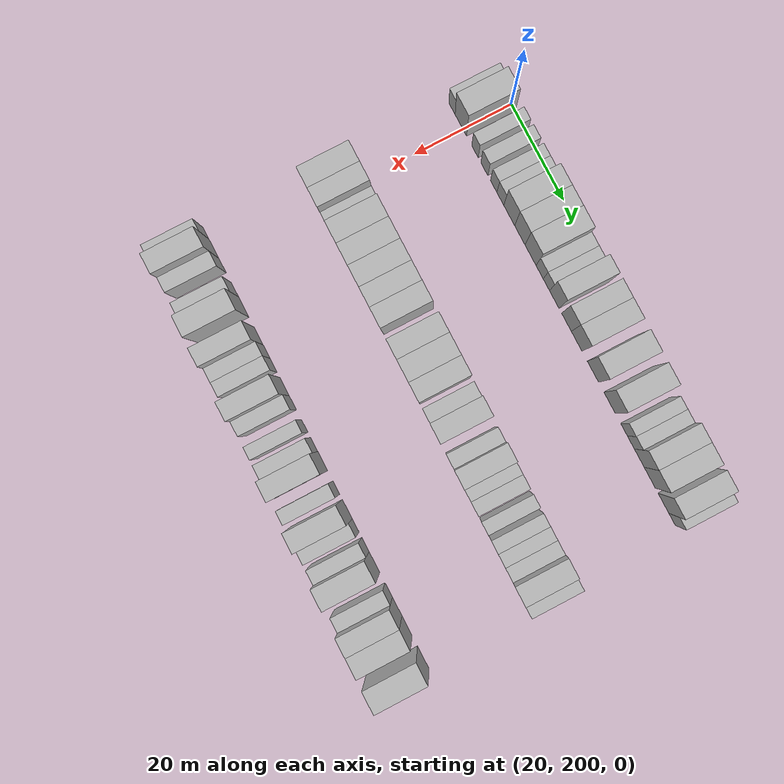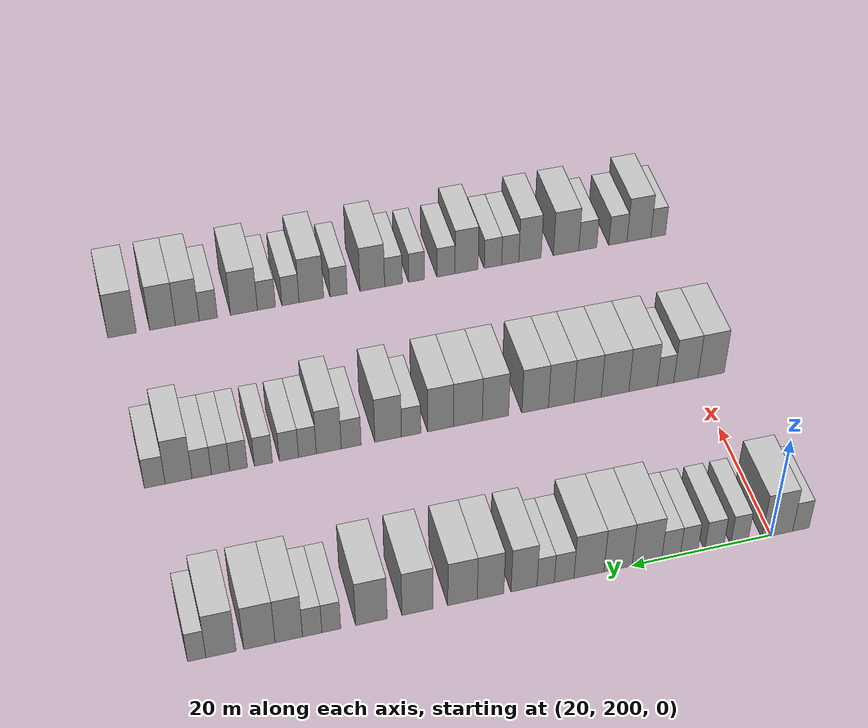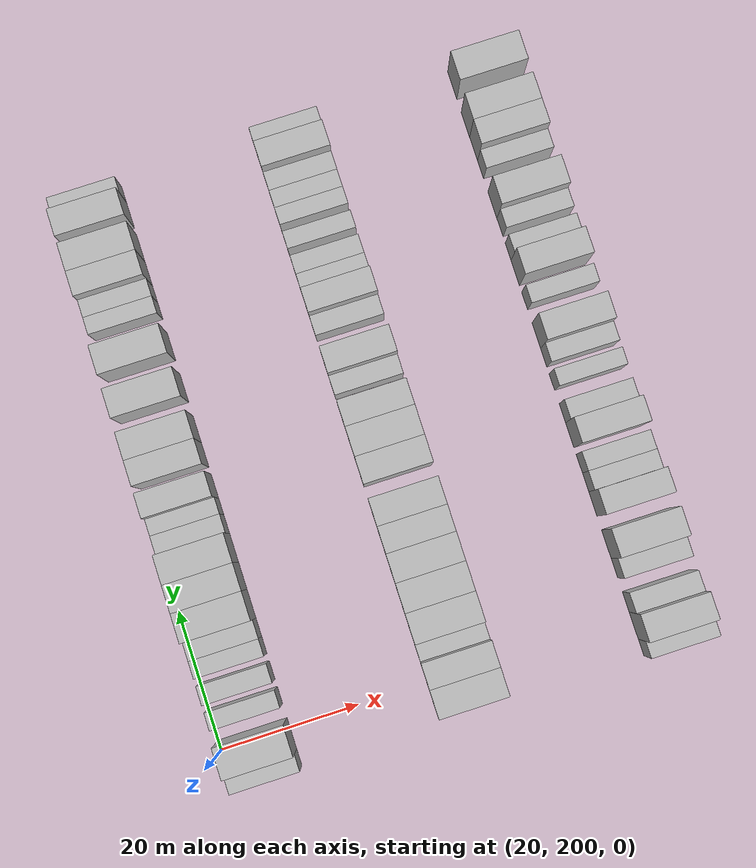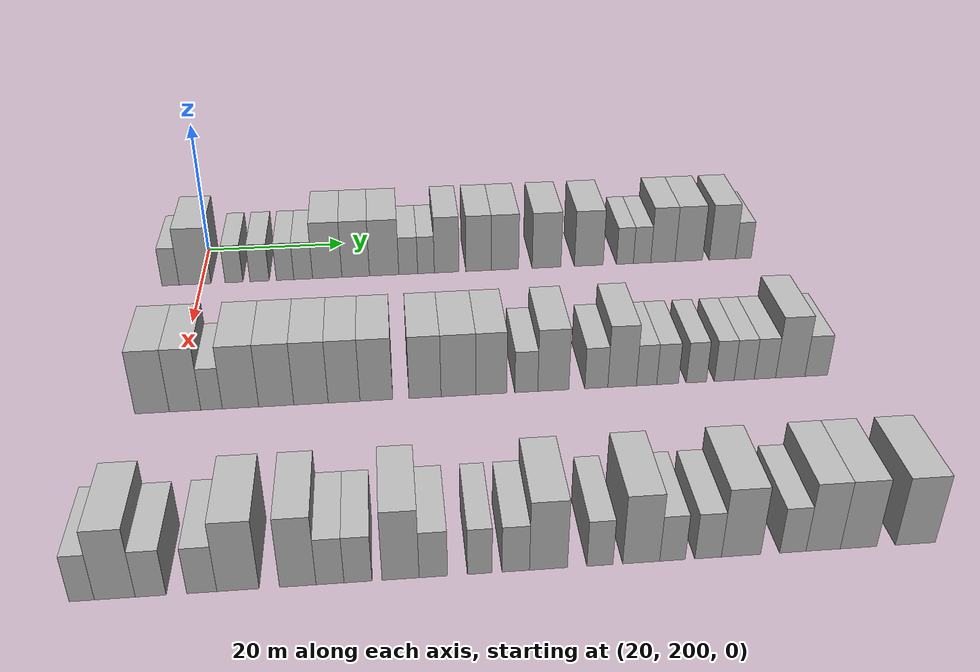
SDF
<sdf version="1.6">
 <world name="default">
  <model name="building_105">
   <static>1</static>
   <pose>25.0000 195.6701 0 0.000000 0.000000 0.000000</pose>
   <link name="link">
    <pose>0 0 3.00 0 0 0</pose>
    <collision name="collision"><geometry><box><size>10.0000 2.4074 6.0000</size></box></geometry></collision>
    <visual name="visual">
     <cast_shadows>0</cast_shadows>
     <geometry><box><size>10.0000 2.4074 6.0000</size></box></geometry>
     <material>
      <script>
       <uri>model://HANNAS_wall/materials/scripts</uri>
       <uri>model://HANNAS_wall/materials/textures</uri>
       <name>vrc/HANNAS_wall</name>
      </script>
     </material>
    </visual>
   </link>
  </model>
  <model name="building_106">
   <static>1</static>
   <pose>25.0000 199.1160 0 0.000000 0.000000 0.000000</pose>
   <link name="link">
    <pose>0 0 4.50 0 0 0</pose>
    <collision name="collision"><geometry><box><size>10.0000 4.4845 9.0000</size></box></geometry></collision>
    <visual name="visual">
     <cast_shadows>0</cast_shadows>
     <geometry><box><size>10.0000 4.4845 9.0000</size></box></geometry>
     <material>
      <script>
       <uri>model://HANNAS_wall/materials/scripts</uri>
       <uri>model://HANNAS_wall/materials/textures</uri>
       <name>vrc/HANNAS_wall</name>
      </script>
     </material>
    </visual>
   </link>
  </model>
  <model name="building_107">
   <static>1</static>
   <pose>25.0000 204.6171 0 0.000000 0.000000 0.000000</pose>
   <link name="link">
    <pose>0 0 3.00 0 0 0</pose>
    <collision name="collision"><geometry><box><size>10.0000 2.5177 6.0000</size></box></geometry></collision>
    <visual name="visual">
     <cast_shadows>0</cast_shadows>
     <geometry><box><size>10.0000 2.5177 6.0000</size></box></geometry>
     <material>
      <script>
       <uri>model://HANNAS_wall/materials/scripts</uri>
       <uri>model://HANNAS_wall/materials/textures</uri>
       <name>vrc/HANNAS_wall</name>
      </script>
     </material>
    </visual>
   </link>
  </model>
  <model name="building_108">
   <static>1</static>
   <pose>25.0000 208.2448 0 0.000000 0.000000 0.000000</pose>
   <link name="link">
    <pose>0 0 3.00 0 0 0</pose>
    <collision name="collision"><geometry><box><size>10.0000 2.7377 6.0000</size></box></geometry></collision>
    <visual name="visual">
     <cast_shadows>0</cast_shadows>
     <geometry><box><size>10.0000 2.7377 6.0000</size></box></geometry>
     <material>
      <script>
       <uri>model://HANNAS_wall/materials/scripts</uri>
       <uri>model://HANNAS_wall/materials/textures</uri>
       <name>vrc/HANNAS_wall</name>
      </script>
     </material>
    </visual>
   </link>
  </model>
  <model name="building_109">
   <static>1</static>
   <pose>25.0000 211.8629 0 0.000000 0.000000 0.000000</pose>
   <link name="link">
    <pose>0 0 3.00 0 0 0</pose>
    <collision name="collision"><geometry><box><size>10.0000 2.4986 6.0000</size></box></geometry></collision>
    <visual name="visual">
     <cast_shadows>0</cast_shadows>
     <geometry><box><size>10.0000 2.4986 6.0000</size></box></geometry>
     <material>
      <script>
       <uri>model://HANNAS_wall/materials/scripts</uri>
       <uri>model://HANNAS_wall/materials/textures</uri>
       <name>vrc/HANNAS_wall</name>
      </script>
     </material>
    </visual>
   </link>
  </model>
  <model name="building_110">
   <static>1</static>
   <pose>25.0000 214.4516 0 0.000000 0.000000 0.000000</pose>
   <link name="link">
    <pose>0 0 3.00 0 0 0</pose>
    <collision name="collision"><geometry><box><size>10.0000 2.6788 6.0000</size></box></geometry></collision>
    <visual name="visual">
     <cast_shadows>0</cast_shadows>
     <geometry><box><size>10.0000 2.6788 6.0000</size></box></geometry>
     <material>
      <script>
       <uri>model://HANNAS_wall/materials/scripts</uri>
       <uri>model://HANNAS_wall/materials/textures</uri>
       <name>vrc/HANNAS_wall</name>
      </script>
     </material>
    </visual>
   </link>
  </model>
  <model name="building_111">
   <static>1</static>
   <pose>25.0000 217.8887 0 0.000000 0.000000 0.000000</pose>
   <link name="link">
    <pose>0 0 4.50 0 0 0</pose>
    <collision name="collision"><geometry><box><size>10.0000 4.1953 9.0000</size></box></geometry></collision>
    <visual name="visual">
     <cast_shadows>0</cast_shadows>
     <geometry><box><size>10.0000 4.1953 9.0000</size></box></geometry>
     <material>
      <script>
       <uri>model://HANNAS_wall/materials/scripts</uri>
       <uri>model://HANNAS_wall/materials/textures</uri>
       <name>vrc/HANNAS_wall</name>
      </script>
     </material>
    </visual>
   </link>
  </model>
  <model name="building_112">
   <static>1</static>
   <pose>25.0000 221.9739 0 0.000000 0.000000 0.000000</pose>
   <link name="link">
    <pose>0 0 4.50 0 0 0</pose>
    <collision name="collision"><geometry><box><size>10.0000 3.9751 9.0000</size></box></geometry></collision>
    <visual name="visual">
     <cast_shadows>0</cast_shadows>
     <geometry><box><size>10.0000 3.9751 9.0000</size></box></geometry>
     <material>
      <script>
       <uri>model://HANNAS_wall/materials/scripts</uri>
       <uri>model://HANNAS_wall/materials/textures</uri>
       <name>vrc/HANNAS_wall</name>
      </script>
     </material>
    </visual>
   </link>
  </model>
  <model name="building_113">
   <static>1</static>
   <pose>25.0000 226.0770 0 0.000000 0.000000 0.000000</pose>
   <link name="link">
    <pose>0 0 4.50 0 0 0</pose>
    <collision name="collision"><geometry><box><size>10.0000 4.2312 9.0000</size></box></geometry></collision>
    <visual name="visual">
     <cast_shadows>0</cast_shadows>
     <geometry><box><size>10.0000 4.2312 9.0000</size></box></geometry>
     <material>
      <script>
       <uri>model://HANNAS_wall/materials/scripts</uri>
       <uri>model://HANNAS_wall/materials/textures</uri>
       <name>vrc/HANNAS_wall</name>
      </script>
     </material>
    </visual>
   </link>
  </model>
  <model name="building_114">
   <static>1</static>
   <pose>25.0000 229.5596 0 0.000000 0.000000 0.000000</pose>
   <link name="link">
    <pose>0 0 3.00 0 0 0</pose>
    <collision name="collision"><geometry><box><size>10.0000 2.7341 6.0000</size></box></geometry></collision>
    <visual name="visual">
     <cast_shadows>0</cast_shadows>
     <geometry><box><size>10.0000 2.7341 6.0000</size></box></geometry>
     <material>
      <script>
       <uri>model://HANNAS_wall/materials/scripts</uri>
       <uri>model://HANNAS_wall/materials/textures</uri>
       <name>vrc/HANNAS_wall</name>
      </script>
     </material>
    </visual>
   </link>
  </model>
  <model name="building_115">
   <static>1</static>
   <pose>25.0000 232.1366 0 0.000000 0.000000 0.000000</pose>
   <link name="link">
    <pose>0 0 3.00 0 0 0</pose>
    <collision name="collision"><geometry><box><size>10.0000 2.4199 6.0000</size></box></geometry></collision>
    <visual name="visual">
     <cast_shadows>0</cast_shadows>
     <geometry><box><size>10.0000 2.4199 6.0000</size></box></geometry>
     <material>
      <script>
       <uri>model://HANNAS_wall/materials/scripts</uri>
       <uri>model://HANNAS_wall/materials/textures</uri>
       <name>vrc/HANNAS_wall</name>
      </script>
     </material>
    </visual>
   </link>
  </model>
  <model name="building_116">
   <static>1</static>
   <pose>25.0000 235.1518 0 0.000000 0.000000 0.000000</pose>
   <link name="link">
    <pose>0 0 4.50 0 0 0</pose>
    <collision name="collision"><geometry><box><size>10.0000 3.6105 9.0000</size></box></geometry></collision>
    <visual name="visual">
     <cast_shadows>0</cast_shadows>
     <geometry><box><size>10.0000 3.6105 9.0000</size></box></geometry>
     <material>
      <script>
       <uri>model://HANNAS_wall/materials/scripts</uri>
       <uri>model://HANNAS_wall/materials/textures</uri>
       <name>vrc/HANNAS_wall</name>
      </script>
     </material>
    </visual>
   </link>
  </model>
  <model name="building_117">
   <static>1</static>
   <pose>25.0000 239.7912 0 0.000000 0.000000 0.000000</pose>
   <link name="link">
    <pose>0 0 4.50 0 0 0</pose>
    <collision name="collision"><geometry><box><size>10.0000 3.6682 9.0000</size></box></geometry></collision>
    <visual name="visual">
     <cast_shadows>0</cast_shadows>
     <geometry><box><size>10.0000 3.6682 9.0000</size></box></geometry>
     <material>
      <script>
       <uri>model://HANNAS_wall/materials/scripts</uri>
       <uri>model://HANNAS_wall/materials/textures</uri>
       <name>vrc/HANNAS_wall</name>
      </script>
     </material>
    </visual>
   </link>
  </model>
  <model name="building_118">
   <static>1</static>
   <pose>25.0000 243.6455 0 0.000000 0.000000 0.000000</pose>
   <link name="link">
    <pose>0 0 4.50 0 0 0</pose>
    <collision name="collision"><geometry><box><size>10.0000 4.0405 9.0000</size></box></geometry></collision>
    <visual name="visual">
     <cast_shadows>0</cast_shadows>
     <geometry><box><size>10.0000 4.0405 9.0000</size></box></geometry>
     <material>
      <script>
       <uri>model://HANNAS_wall/materials/scripts</uri>
       <uri>model://HANNAS_wall/materials/textures</uri>
       <name>vrc/HANNAS_wall</name>
      </script>
     </material>
    </visual>
   </link>
  </model>
  <model name="building_119">
   <static>1</static>
   <pose>25.0000 249.7905 0 0.000000 0.000000 0.000000</pose>
   <link name="link">
    <pose>0 0 4.50 0 0 0</pose>
    <collision name="collision"><geometry><box><size>10.0000 4.2494 9.0000</size></box></geometry></collision>
    <visual name="visual">
     <cast_shadows>0</cast_shadows>
     <geometry><box><size>10.0000 4.2494 9.0000</size></box></geometry>
     <material>
      <script>
       <uri>model://HANNAS_wall/materials/scripts</uri>
       <uri>model://HANNAS_wall/materials/textures</uri>
       <name>vrc/HANNAS_wall</name>
      </script>
     </material>
    </visual>
   </link>
  </model>
  <model name="building_120">
   <static>1</static>
   <pose>25.0000 256.0481 0 0.000000 0.000000 0.000000</pose>
   <link name="link">
    <pose>0 0 4.50 0 0 0</pose>
    <collision name="collision"><geometry><box><size>10.0000 4.2659 9.0000</size></box></geometry></collision>
    <visual name="visual">
     <cast_shadows>0</cast_shadows>
     <geometry><box><size>10.0000 4.2659 9.0000</size></box></geometry>
     <material>
      <script>
       <uri>model://HANNAS_wall/materials/scripts</uri>
       <uri>model://HANNAS_wall/materials/textures</uri>
       <name>vrc/HANNAS_wall</name>
      </script>
     </material>
    </visual>
   </link>
  </model>
  <model name="building_121">
   <static>1</static>
   <pose>25.0000 261.4391 0 0.000000 0.000000 0.000000</pose>
   <link name="link">
    <pose>0 0 3.00 0 0 0</pose>
    <collision name="collision"><geometry><box><size>10.0000 2.5162 6.0000</size></box></geometry></collision>
    <visual name="visual">
     <cast_shadows>0</cast_shadows>
     <geometry><box><size>10.0000 2.5162 6.0000</size></box></geometry>
     <material>
      <script>
       <uri>model://HANNAS_wall/materials/scripts</uri>
       <uri>model://HANNAS_wall/materials/textures</uri>
       <name>vrc/HANNAS_wall</name>
      </script>
     </material>
    </visual>
   </link>
  </model>
  <model name="building_122">
   <static>1</static>
   <pose>25.0000 263.9939 0 0.000000 0.000000 0.000000</pose>
   <link name="link">
    <pose>0 0 3.00 0 0 0</pose>
    <collision name="collision"><geometry><box><size>10.0000 2.5934 6.0000</size></box></geometry></collision>
    <visual name="visual">
     <cast_shadows>0</cast_shadows>
     <geometry><box><size>10.0000 2.5934 6.0000</size></box></geometry>
     <material>
      <script>
       <uri>model://HANNAS_wall/materials/scripts</uri>
       <uri>model://HANNAS_wall/materials/textures</uri>
       <name>vrc/HANNAS_wall</name>
      </script>
     </material>
    </visual>
   </link>
  </model>
  <model name="building_123">
   <static>1</static>
   <pose>25.0000 267.1107 0 0.000000 0.000000 0.000000</pose>
   <link name="link">
    <pose>0 0 4.50 0 0 0</pose>
    <collision name="collision"><geometry><box><size>10.0000 3.6402 9.0000</size></box></geometry></collision>
    <visual name="visual">
     <cast_shadows>0</cast_shadows>
     <geometry><box><size>10.0000 3.6402 9.0000</size></box></geometry>
     <material>
      <script>
       <uri>model://HANNAS_wall/materials/scripts</uri>
       <uri>model://HANNAS_wall/materials/textures</uri>
       <name>vrc/HANNAS_wall</name>
      </script>
     </material>
    </visual>
   </link>
  </model>
  <model name="building_124">
   <static>1</static>
   <pose>25.0000 271.0103 0 0.000000 0.000000 0.000000</pose>
   <link name="link">
    <pose>0 0 4.50 0 0 0</pose>
    <collision name="collision"><geometry><box><size>10.0000 4.1590 9.0000</size></box></geometry></collision>
    <visual name="visual">
     <cast_shadows>0</cast_shadows>
     <geometry><box><size>10.0000 4.1590 9.0000</size></box></geometry>
     <material>
      <script>
       <uri>model://HANNAS_wall/materials/scripts</uri>
       <uri>model://HANNAS_wall/materials/textures</uri>
       <name>vrc/HANNAS_wall</name>
      </script>
     </material>
    </visual>
   </link>
  </model>
  <model name="building_125">
   <static>1</static>
   <pose>25.0000 276.0786 0 0.000000 0.000000 0.000000</pose>
   <link name="link">
    <pose>0 0 4.50 0 0 0</pose>
    <collision name="collision"><geometry><box><size>10.0000 3.9776 9.0000</size></box></geometry></collision>
    <visual name="visual">
     <cast_shadows>0</cast_shadows>
     <geometry><box><size>10.0000 3.9776 9.0000</size></box></geometry>
     <material>
      <script>
       <uri>model://HANNAS_wall/materials/scripts</uri>
       <uri>model://HANNAS_wall/materials/textures</uri>
       <name>vrc/HANNAS_wall</name>
      </script>
     </material>
    </visual>
   </link>
  </model>
  <model name="building_126">
   <static>1</static>
   <pose>25.0000 279.2692 0 0.000000 0.000000 0.000000</pose>
   <link name="link">
    <pose>0 0 3.00 0 0 0</pose>
    <collision name="collision"><geometry><box><size>10.0000 2.4036 6.0000</size></box></geometry></collision>
    <visual name="visual">
     <cast_shadows>0</cast_shadows>
     <geometry><box><size>10.0000 2.4036 6.0000</size></box></geometry>
     <material>
      <script>
       <uri>model://HANNAS_wall/materials/scripts</uri>
       <uri>model://HANNAS_wall/materials/textures</uri>
       <name>vrc/HANNAS_wall</name>
      </script>
     </material>
    </visual>
   </link>
  </model>
  <model name="building_250">
   <static>1</static>
   <pose>55.0000 197.6248 0 0.000000 0.000000 0.000000</pose>
   <link name="link">
    <pose>0 0 4.50 0 0 0</pose>
    <collision name="collision"><geometry><box><size>10.0000 4.0886 9.0000</size></box></geometry></collision>
    <visual name="visual">
     <cast_shadows>0</cast_shadows>
     <geometry><box><size>10.0000 4.0886 9.0000</size></box></geometry>
     <material>
      <script>
       <uri>model://HANNAS_wall/materials/scripts</uri>
       <uri>model://HANNAS_wall/materials/textures</uri>
       <name>vrc/HANNAS_wall</name>
      </script>
     </material>
    </visual>
   </link>
  </model>
  <model name="building_251">
   <static>1</static>
   <pose>55.0000 201.5388 0 0.000000 0.000000 0.000000</pose>
   <link name="link">
    <pose>0 0 4.50 0 0 0</pose>
    <collision name="collision"><geometry><box><size>10.0000 3.7393 9.0000</size></box></geometry></collision>
    <visual name="visual">
     <cast_shadows>0</cast_shadows>
     <geometry><box><size>10.0000 3.7393 9.0000</size></box></geometry>
     <material>
      <script>
       <uri>model://HANNAS_wall/materials/scripts</uri>
       <uri>model://HANNAS_wall/materials/textures</uri>
       <name>vrc/HANNAS_wall</name>
      </script>
     </material>
    </visual>
   </link>
  </model>
  <model name="building_252">
   <static>1</static>
   <pose>55.0000 204.6922 0 0.000000 0.000000 0.000000</pose>
   <link name="link">
    <pose>0 0 3.00 0 0 0</pose>
    <collision name="collision"><geometry><box><size>10.0000 2.5674 6.0000</size></box></geometry></collision>
    <visual name="visual">
     <cast_shadows>0</cast_shadows>
     <geometry><box><size>10.0000 2.5674 6.0000</size></box></geometry>
     <material>
      <script>
       <uri>model://HANNAS_wall/materials/scripts</uri>
       <uri>model://HANNAS_wall/materials/textures</uri>
       <name>vrc/HANNAS_wall</name>
      </script>
     </material>
    </visual>
   </link>
  </model>
  <model name="building_253">
   <static>1</static>
   <pose>55.0000 208.1551 0 0.000000 0.000000 0.000000</pose>
   <link name="link">
    <pose>0 0 4.50 0 0 0</pose>
    <collision name="collision"><geometry><box><size>10.0000 4.3584 9.0000</size></box></geometry></collision>
    <visual name="visual">
     <cast_shadows>0</cast_shadows>
     <geometry><box><size>10.0000 4.3584 9.0000</size></box></geometry>
     <material>
      <script>
       <uri>model://HANNAS_wall/materials/scripts</uri>
       <uri>model://HANNAS_wall/materials/textures</uri>
       <name>vrc/HANNAS_wall</name>
      </script>
     </material>
    </visual>
   </link>
  </model>
  <model name="building_254">
   <static>1</static>
   <pose>55.0000 212.4514 0 0.000000 0.000000 0.000000</pose>
   <link name="link">
    <pose>0 0 4.50 0 0 0</pose>
    <collision name="collision"><geometry><box><size>10.0000 4.2341 9.0000</size></box></geometry></collision>
    <visual name="visual">
     <cast_shadows>0</cast_shadows>
     <geometry><box><size>10.0000 4.2341 9.0000</size></box></geometry>
     <material>
      <script>
       <uri>model://HANNAS_wall/materials/scripts</uri>
       <uri>model://HANNAS_wall/materials/textures</uri>
       <name>vrc/HANNAS_wall</name>
      </script>
     </material>
    </visual>
   </link>
  </model>
  <model name="building_255">
   <static>1</static>
   <pose>55.0000 216.6435 0 0.000000 0.000000 0.000000</pose>
   <link name="link">
    <pose>0 0 4.50 0 0 0</pose>
    <collision name="collision"><geometry><box><size>10.0000 4.1502 9.0000</size></box></geometry></collision>
    <visual name="visual">
     <cast_shadows>0</cast_shadows>
     <geometry><box><size>10.0000 4.1502 9.0000</size></box></geometry>
     <material>
      <script>
       <uri>model://HANNAS_wall/materials/scripts</uri>
       <uri>model://HANNAS_wall/materials/textures</uri>
       <name>vrc/HANNAS_wall</name>
      </script>
     </material>
    </visual>
   </link>
  </model>
  <model name="building_256">
   <static>1</static>
   <pose>55.0000 220.6488 0 0.000000 0.000000 0.000000</pose>
   <link name="link">
    <pose>0 0 4.50 0 0 0</pose>
    <collision name="collision"><geometry><box><size>10.0000 3.8603 9.0000</size></box></geometry></collision>
    <visual name="visual">
     <cast_shadows>0</cast_shadows>
     <geometry><box><size>10.0000 3.8603 9.0000</size></box></geometry>
     <material>
      <script>
       <uri>model://HANNAS_wall/materials/scripts</uri>
       <uri>model://HANNAS_wall/materials/textures</uri>
       <name>vrc/HANNAS_wall</name>
      </script>
     </material>
    </visual>
   </link>
  </model>
  <model name="building_257">
   <static>1</static>
   <pose>55.0000 224.5781 0 0.000000 0.000000 0.000000</pose>
   <link name="link">
    <pose>0 0 4.50 0 0 0</pose>
    <collision name="collision"><geometry><box><size>10.0000 3.9985 9.0000</size></box></geometry></collision>
    <visual name="visual">
     <cast_shadows>0</cast_shadows>
     <geometry><box><size>10.0000 3.9985 9.0000</size></box></geometry>
     <material>
      <script>
       <uri>model://HANNAS_wall/materials/scripts</uri>
       <uri>model://HANNAS_wall/materials/textures</uri>
       <name>vrc/HANNAS_wall</name>
      </script>
     </material>
    </visual>
   </link>
  </model>
  <model name="building_258">
   <static>1</static>
   <pose>55.0000 230.5422 0 0.000000 0.000000 0.000000</pose>
   <link name="link">
    <pose>0 0 4.50 0 0 0</pose>
    <collision name="collision"><geometry><box><size>10.0000 3.9295 9.0000</size></box></geometry></collision>
    <visual name="visual">
     <cast_shadows>0</cast_shadows>
     <geometry><box><size>10.0000 3.9295 9.0000</size></box></geometry>
     <material>
      <script>
       <uri>model://HANNAS_wall/materials/scripts</uri>
       <uri>model://HANNAS_wall/materials/textures</uri>
       <name>vrc/HANNAS_wall</name>
      </script>
     </material>
    </visual>
   </link>
  </model>
  <model name="building_259">
   <static>1</static>
   <pose>55.0000 234.6573 0 0.000000 0.000000 0.000000</pose>
   <link name="link">
    <pose>0 0 4.50 0 0 0</pose>
    <collision name="collision"><geometry><box><size>10.0000 4.3008 9.0000</size></box></geometry></collision>
    <visual name="visual">
     <cast_shadows>0</cast_shadows>
     <geometry><box><size>10.0000 4.3008 9.0000</size></box></geometry>
     <material>
      <script>
       <uri>model://HANNAS_wall/materials/scripts</uri>
       <uri>model://HANNAS_wall/materials/textures</uri>
       <name>vrc/HANNAS_wall</name>
      </script>
     </material>
    </visual>
   </link>
  </model>
  <model name="building_260">
   <static>1</static>
   <pose>55.0000 238.7198 0 0.000000 0.000000 0.000000</pose>
   <link name="link">
    <pose>0 0 4.50 0 0 0</pose>
    <collision name="collision"><geometry><box><size>10.0000 3.8240 9.0000</size></box></geometry></collision>
    <visual name="visual">
     <cast_shadows>0</cast_shadows>
     <geometry><box><size>10.0000 3.8240 9.0000</size></box></geometry>
     <material>
      <script>
       <uri>model://HANNAS_wall/materials/scripts</uri>
       <uri>model://HANNAS_wall/materials/textures</uri>
       <name>vrc/HANNAS_wall</name>
      </script>
     </material>
    </visual>
   </link>
  </model>
  <model name="building_261">
   <static>1</static>
   <pose>55.0000 243.0560 0 0.000000 0.000000 0.000000</pose>
   <link name="link">
    <pose>0 0 3.00 0 0 0</pose>
    <collision name="collision"><geometry><box><size>10.0000 2.8485 6.0000</size></box></geometry></collision>
    <visual name="visual">
     <cast_shadows>0</cast_shadows>
     <geometry><box><size>10.0000 2.8485 6.0000</size></box></geometry>
     <material>
      <script>
       <uri>model://HANNAS_wall/materials/scripts</uri>
       <uri>model://HANNAS_wall/materials/textures</uri>
       <name>vrc/HANNAS_wall</name>
      </script>
     </material>
    </visual>
   </link>
  </model>
  <model name="building_262">
   <static>1</static>
   <pose>55.0000 246.4287 0 0.000000 0.000000 0.000000</pose>
   <link name="link">
    <pose>0 0 4.50 0 0 0</pose>
    <collision name="collision"><geometry><box><size>10.0000 3.8967 9.0000</size></box></geometry></collision>
    <visual name="visual">
     <cast_shadows>0</cast_shadows>
     <geometry><box><size>10.0000 3.8967 9.0000</size></box></geometry>
     <material>
      <script>
       <uri>model://HANNAS_wall/materials/scripts</uri>
       <uri>model://HANNAS_wall/materials/textures</uri>
       <name>vrc/HANNAS_wall</name>
      </script>
     </material>
    </visual>
   </link>
  </model>
  <model name="building_263">
   <static>1</static>
   <pose>55.0000 251.8244 0 0.000000 0.000000 0.000000</pose>
   <link name="link">
    <pose>0 0 3.00 0 0 0</pose>
    <collision name="collision"><geometry><box><size>10.0000 2.8946 6.0000</size></box></geometry></collision>
    <visual name="visual">
     <cast_shadows>0</cast_shadows>
     <geometry><box><size>10.0000 2.8946 6.0000</size></box></geometry>
     <material>
      <script>
       <uri>model://HANNAS_wall/materials/scripts</uri>
       <uri>model://HANNAS_wall/materials/textures</uri>
       <name>vrc/HANNAS_wall</name>
      </script>
     </material>
    </visual>
   </link>
  </model>
  <model name="building_264">
   <static>1</static>
   <pose>55.0000 255.0800 0 0.000000 0.000000 0.000000</pose>
   <link name="link">
    <pose>0 0 4.50 0 0 0</pose>
    <collision name="collision"><geometry><box><size>10.0000 3.6167 9.0000</size></box></geometry></collision>
    <visual name="visual">
     <cast_shadows>0</cast_shadows>
     <geometry><box><size>10.0000 3.6167 9.0000</size></box></geometry>
     <material>
      <script>
       <uri>model://HANNAS_wall/materials/scripts</uri>
       <uri>model://HANNAS_wall/materials/textures</uri>
       <name>vrc/HANNAS_wall</name>
      </script>
     </material>
    </visual>
   </link>
  </model>
  <model name="building_265">
   <static>1</static>
   <pose>55.0000 258.1707 0 0.000000 0.000000 0.000000</pose>
   <link name="link">
    <pose>0 0 3.00 0 0 0</pose>
    <collision name="collision"><geometry><box><size>10.0000 2.5647 6.0000</size></box></geometry></collision>
    <visual name="visual">
     <cast_shadows>0</cast_shadows>
     <geometry><box><size>10.0000 2.5647 6.0000</size></box></geometry>
     <material>
      <script>
       <uri>model://HANNAS_wall/materials/scripts</uri>
       <uri>model://HANNAS_wall/materials/textures</uri>
       <name>vrc/HANNAS_wall</name>
      </script>
     </material>
    </visual>
   </link>
  </model>
  <model name="building_266">
   <static>1</static>
   <pose>55.0000 260.8354 0 0.000000 0.000000 0.000000</pose>
   <link name="link">
    <pose>0 0 3.00 0 0 0</pose>
    <collision name="collision"><geometry><box><size>10.0000 2.7646 6.0000</size></box></geometry></collision>
    <visual name="visual">
     <cast_shadows>0</cast_shadows>
     <geometry><box><size>10.0000 2.7646 6.0000</size></box></geometry>
     <material>
      <script>
       <uri>model://HANNAS_wall/materials/scripts</uri>
       <uri>model://HANNAS_wall/materials/textures</uri>
       <name>vrc/HANNAS_wall</name>
      </script>
     </material>
    </visual>
   </link>
  </model>
  <model name="building_267">
   <static>1</static>
   <pose>55.0000 264.5083 0 0.000000 0.000000 0.000000</pose>
   <link name="link">
    <pose>0 0 3.00 0 0 0</pose>
    <collision name="collision"><geometry><box><size>10.0000 2.5812 6.0000</size></box></geometry></collision>
    <visual name="visual">
     <cast_shadows>0</cast_shadows>
     <geometry><box><size>10.0000 2.5812 6.0000</size></box></geometry>
     <material>
      <script>
       <uri>model://HANNAS_wall/materials/scripts</uri>
       <uri>model://HANNAS_wall/materials/textures</uri>
       <name>vrc/HANNAS_wall</name>
      </script>
     </material>
    </visual>
   </link>
  </model>
  <model name="building_268">
   <static>1</static>
   <pose>55.0000 268.0666 0 0.000000 0.000000 0.000000</pose>
   <link name="link">
    <pose>0 0 3.00 0 0 0</pose>
    <collision name="collision"><geometry><box><size>10.0000 2.5355 6.0000</size></box></geometry></collision>
    <visual name="visual">
     <cast_shadows>0</cast_shadows>
     <geometry><box><size>10.0000 2.5355 6.0000</size></box></geometry>
     <material>
      <script>
       <uri>model://HANNAS_wall/materials/scripts</uri>
       <uri>model://HANNAS_wall/materials/textures</uri>
       <name>vrc/HANNAS_wall</name>
      </script>
     </material>
    </visual>
   </link>
  </model>
  <model name="building_269">
   <static>1</static>
   <pose>55.0000 270.6282 0 0.000000 0.000000 0.000000</pose>
   <link name="link">
    <pose>0 0 3.00 0 0 0</pose>
    <collision name="collision"><geometry><box><size>10.0000 2.5876 6.0000</size></box></geometry></collision>
    <visual name="visual">
     <cast_shadows>0</cast_shadows>
     <geometry><box><size>10.0000 2.5876 6.0000</size></box></geometry>
     <material>
      <script>
       <uri>model://HANNAS_wall/materials/scripts</uri>
       <uri>model://HANNAS_wall/materials/textures</uri>
       <name>vrc/HANNAS_wall</name>
      </script>
     </material>
    </visual>
   </link>
  </model>
  <model name="building_270">
   <static>1</static>
   <pose>55.0000 273.2972 0 0.000000 0.000000 0.000000</pose>
   <link name="link">
    <pose>0 0 3.00 0 0 0</pose>
    <collision name="collision"><geometry><box><size>10.0000 2.7504 6.0000</size></box></geometry></collision>
    <visual name="visual">
     <cast_shadows>0</cast_shadows>
     <geometry><box><size>10.0000 2.7504 6.0000</size></box></geometry>
     <material>
      <script>
       <uri>model://HANNAS_wall/materials/scripts</uri>
       <uri>model://HANNAS_wall/materials/textures</uri>
       <name>vrc/HANNAS_wall</name>
      </script>
     </material>
    </visual>
   </link>
  </model>
  <model name="building_271">
   <static>1</static>
   <pose>55.0000 276.5689 0 0.000000 0.000000 0.000000</pose>
   <link name="link">
    <pose>0 0 4.50 0 0 0</pose>
    <collision name="collision"><geometry><box><size>10.0000 3.7930 9.0000</size></box></geometry></collision>
    <visual name="visual">
     <cast_shadows>0</cast_shadows>
     <geometry><box><size>10.0000 3.7930 9.0000</size></box></geometry>
     <material>
      <script>
       <uri>model://HANNAS_wall/materials/scripts</uri>
       <uri>model://HANNAS_wall/materials/textures</uri>
       <name>vrc/HANNAS_wall</name>
      </script>
     </material>
    </visual>
   </link>
  </model>
  <model name="building_272">
   <static>1</static>
   <pose>55.0000 279.9340 0 0.000000 0.000000 0.000000</pose>
   <link name="link">
    <pose>0 0 3.00 0 0 0</pose>
    <collision name="collision"><geometry><box><size>10.0000 2.9372 6.0000</size></box></geometry></collision>
    <visual name="visual">
     <cast_shadows>0</cast_shadows>
     <geometry><box><size>10.0000 2.9372 6.0000</size></box></geometry>
     <material>
      <script>
       <uri>model://HANNAS_wall/materials/scripts</uri>
       <uri>model://HANNAS_wall/materials/textures</uri>
       <name>vrc/HANNAS_wall</name>
      </script>
     </material>
    </visual>
   </link>
  </model>
  <model name="building_380">
   <static>1</static>
   <pose>85.0000 195.3877 0 0.000000 0.000000 0.000000</pose>
   <link name="link">
    <pose>0 0 3.00 0 0 0</pose>
    <collision name="collision"><geometry><box><size>10.0000 2.4229 6.0000</size></box></geometry></collision>
    <visual name="visual">
     <cast_shadows>0</cast_shadows>
     <geometry><box><size>10.0000 2.4229 6.0000</size></box></geometry>
     <material>
      <script>
       <uri>model://HANNAS_wall/materials/scripts</uri>
       <uri>model://HANNAS_wall/materials/textures</uri>
       <name>vrc/HANNAS_wall</name>
      </script>
     </material>
    </visual>
   </link>
  </model>
  <model name="building_381">
   <static>1</static>
   <pose>85.0000 198.5699 0 0.000000 0.000000 0.000000</pose>
   <link name="link">
    <pose>0 0 4.50 0 0 0</pose>
    <collision name="collision"><geometry><box><size>10.0000 3.9417 9.0000</size></box></geometry></collision>
    <visual name="visual">
     <cast_shadows>0</cast_shadows>
     <geometry><box><size>10.0000 3.9417 9.0000</size></box></geometry>
     <material>
      <script>
       <uri>model://HANNAS_wall/materials/scripts</uri>
       <uri>model://HANNAS_wall/materials/textures</uri>
       <name>vrc/HANNAS_wall</name>
      </script>
     </material>
    </visual>
   </link>
  </model>
  <model name="building_382">
   <static>1</static>
   <pose>85.0000 202.0312 0 0.000000 0.000000 0.000000</pose>
   <link name="link">
    <pose>0 0 3.00 0 0 0</pose>
    <collision name="collision"><geometry><box><size>10.0000 2.9808 6.0000</size></box></geometry></collision>
    <visual name="visual">
     <cast_shadows>0</cast_shadows>
     <geometry><box><size>10.0000 2.9808 6.0000</size></box></geometry>
     <material>
      <script>
       <uri>model://HANNAS_wall/materials/scripts</uri>
       <uri>model://HANNAS_wall/materials/textures</uri>
       <name>vrc/HANNAS_wall</name>
      </script>
     </material>
    </visual>
   </link>
  </model>
  <model name="building_383">
   <static>1</static>
   <pose>85.0000 206.9894 0 0.000000 0.000000 0.000000</pose>
   <link name="link">
    <pose>0 0 3.00 0 0 0</pose>
    <collision name="collision"><geometry><box><size>10.0000 2.9355 6.0000</size></box></geometry></collision>
    <visual name="visual">
     <cast_shadows>0</cast_shadows>
     <geometry><box><size>10.0000 2.9355 6.0000</size></box></geometry>
     <material>
      <script>
       <uri>model://HANNAS_wall/materials/scripts</uri>
       <uri>model://HANNAS_wall/materials/textures</uri>
       <name>vrc/HANNAS_wall</name>
      </script>
     </material>
    </visual>
   </link>
  </model>
  <model name="building_384">
   <static>1</static>
   <pose>85.0000 210.5289 0 0.000000 0.000000 0.000000</pose>
   <link name="link">
    <pose>0 0 4.50 0 0 0</pose>
    <collision name="collision"><geometry><box><size>10.0000 4.1437 9.0000</size></box></geometry></collision>
    <visual name="visual">
     <cast_shadows>0</cast_shadows>
     <geometry><box><size>10.0000 4.1437 9.0000</size></box></geometry>
     <material>
      <script>
       <uri>model://HANNAS_wall/materials/scripts</uri>
       <uri>model://HANNAS_wall/materials/textures</uri>
       <name>vrc/HANNAS_wall</name>
      </script>
     </material>
    </visual>
   </link>
  </model>
  <model name="building_385">
   <static>1</static>
   <pose>85.0000 216.4072 0 0.000000 0.000000 0.000000</pose>
   <link name="link">
    <pose>0 0 4.50 0 0 0</pose>
    <collision name="collision"><geometry><box><size>10.0000 3.6129 9.0000</size></box></geometry></collision>
    <visual name="visual">
     <cast_shadows>0</cast_shadows>
     <geometry><box><size>10.0000 3.6129 9.0000</size></box></geometry>
     <material>
      <script>
       <uri>model://HANNAS_wall/materials/scripts</uri>
       <uri>model://HANNAS_wall/materials/textures</uri>
       <name>vrc/HANNAS_wall</name>
      </script>
     </material>
    </visual>
   </link>
  </model>
  <model name="building_386">
   <static>1</static>
   <pose>85.0000 219.5964 0 0.000000 0.000000 0.000000</pose>
   <link name="link">
    <pose>0 0 3.00 0 0 0</pose>
    <collision name="collision"><geometry><box><size>10.0000 2.7655 6.0000</size></box></geometry></collision>
    <visual name="visual">
     <cast_shadows>0</cast_shadows>
     <geometry><box><size>10.0000 2.7655 6.0000</size></box></geometry>
     <material>
      <script>
       <uri>model://HANNAS_wall/materials/scripts</uri>
       <uri>model://HANNAS_wall/materials/textures</uri>
       <name>vrc/HANNAS_wall</name>
      </script>
     </material>
    </visual>
   </link>
  </model>
  <model name="building_387">
   <static>1</static>
   <pose>85.0000 222.3741 0 0.000000 0.000000 0.000000</pose>
   <link name="link">
    <pose>0 0 3.00 0 0 0</pose>
    <collision name="collision"><geometry><box><size>10.0000 2.7898 6.0000</size></box></geometry></collision>
    <visual name="visual">
     <cast_shadows>0</cast_shadows>
     <geometry><box><size>10.0000 2.7898 6.0000</size></box></geometry>
     <material>
      <script>
       <uri>model://HANNAS_wall/materials/scripts</uri>
       <uri>model://HANNAS_wall/materials/textures</uri>
       <name>vrc/HANNAS_wall</name>
      </script>
     </material>
    </visual>
   </link>
  </model>
  <model name="building_388">
   <static>1</static>
   <pose>85.0000 226.6228 0 0.000000 0.000000 0.000000</pose>
   <link name="link">
    <pose>0 0 4.50 0 0 0</pose>
    <collision name="collision"><geometry><box><size>10.0000 3.7077 9.0000</size></box></geometry></collision>
    <visual name="visual">
     <cast_shadows>0</cast_shadows>
     <geometry><box><size>10.0000 3.7077 9.0000</size></box></geometry>
     <material>
      <script>
       <uri>model://HANNAS_wall/materials/scripts</uri>
       <uri>model://HANNAS_wall/materials/textures</uri>
       <name>vrc/HANNAS_wall</name>
      </script>
     </material>
    </visual>
   </link>
  </model>
  <model name="building_389">
   <static>1</static>
   <pose>85.0000 229.9091 0 0.000000 0.000000 0.000000</pose>
   <link name="link">
    <pose>0 0 3.00 0 0 0</pose>
    <collision name="collision"><geometry><box><size>10.0000 2.8650 6.0000</size></box></geometry></collision>
    <visual name="visual">
     <cast_shadows>0</cast_shadows>
     <geometry><box><size>10.0000 2.8650 6.0000</size></box></geometry>
     <material>
      <script>
       <uri>model://HANNAS_wall/materials/scripts</uri>
       <uri>model://HANNAS_wall/materials/textures</uri>
       <name>vrc/HANNAS_wall</name>
      </script>
     </material>
    </visual>
   </link>
  </model>
  <model name="building_390">
   <static>1</static>
   <pose>85.0000 234.5942 0 0.000000 0.000000 0.000000</pose>
   <link name="link">
    <pose>0 0 3.00 0 0 0</pose>
    <collision name="collision"><geometry><box><size>10.0000 2.5051 6.0000</size></box></geometry></collision>
    <visual name="visual">
     <cast_shadows>0</cast_shadows>
     <geometry><box><size>10.0000 2.5051 6.0000</size></box></geometry>
     <material>
      <script>
       <uri>model://HANNAS_wall/materials/scripts</uri>
       <uri>model://HANNAS_wall/materials/textures</uri>
       <name>vrc/HANNAS_wall</name>
      </script>
     </material>
    </visual>
   </link>
  </model>
  <model name="building_391">
   <static>1</static>
   <pose>85.0000 238.2418 0 0.000000 0.000000 0.000000</pose>
   <link name="link">
    <pose>0 0 3.00 0 0 0</pose>
    <collision name="collision"><geometry><box><size>10.0000 2.7901 6.0000</size></box></geometry></collision>
    <visual name="visual">
     <cast_shadows>0</cast_shadows>
     <geometry><box><size>10.0000 2.7901 6.0000</size></box></geometry>
     <material>
      <script>
       <uri>model://HANNAS_wall/materials/scripts</uri>
       <uri>model://HANNAS_wall/materials/textures</uri>
       <name>vrc/HANNAS_wall</name>
      </script>
     </material>
    </visual>
   </link>
  </model>
  <model name="building_392">
   <static>1</static>
   <pose>85.0000 241.5756 0 0.000000 0.000000 0.000000</pose>
   <link name="link">
    <pose>0 0 4.50 0 0 0</pose>
    <collision name="collision"><geometry><box><size>10.0000 3.8775 9.0000</size></box></geometry></collision>
    <visual name="visual">
     <cast_shadows>0</cast_shadows>
     <geometry><box><size>10.0000 3.8775 9.0000</size></box></geometry>
     <material>
      <script>
       <uri>model://HANNAS_wall/materials/scripts</uri>
       <uri>model://HANNAS_wall/materials/textures</uri>
       <name>vrc/HANNAS_wall</name>
      </script>
     </material>
    </visual>
   </link>
  </model>
  <model name="building_393">
   <static>1</static>
   <pose>85.0000 246.8555 0 0.000000 0.000000 0.000000</pose>
   <link name="link">
    <pose>0 0 3.00 0 0 0</pose>
    <collision name="collision"><geometry><box><size>10.0000 2.6823 6.0000</size></box></geometry></collision>
    <visual name="visual">
     <cast_shadows>0</cast_shadows>
     <geometry><box><size>10.0000 2.6823 6.0000</size></box></geometry>
     <material>
      <script>
       <uri>model://HANNAS_wall/materials/scripts</uri>
       <uri>model://HANNAS_wall/materials/textures</uri>
       <name>vrc/HANNAS_wall</name>
      </script>
     </material>
    </visual>
   </link>
  </model>
  <model name="building_394">
   <static>1</static>
   <pose>85.0000 251.1109 0 0.000000 0.000000 0.000000</pose>
   <link name="link">
    <pose>0 0 4.50 0 0 0</pose>
    <collision name="collision"><geometry><box><size>10.0000 3.8284 9.0000</size></box></geometry></collision>
    <visual name="visual">
     <cast_shadows>0</cast_shadows>
     <geometry><box><size>10.0000 3.8284 9.0000</size></box></geometry>
     <material>
      <script>
       <uri>model://HANNAS_wall/materials/scripts</uri>
       <uri>model://HANNAS_wall/materials/textures</uri>
       <name>vrc/HANNAS_wall</name>
      </script>
     </material>
    </visual>
   </link>
  </model>
  <model name="building_395">
   <static>1</static>
   <pose>85.0000 254.3539 0 0.000000 0.000000 0.000000</pose>
   <link name="link">
    <pose>0 0 3.00 0 0 0</pose>
    <collision name="collision"><geometry><box><size>10.0000 2.6576 6.0000</size></box></geometry></collision>
    <visual name="visual">
     <cast_shadows>0</cast_shadows>
     <geometry><box><size>10.0000 2.6576 6.0000</size></box></geometry>
     <material>
      <script>
       <uri>model://HANNAS_wall/materials/scripts</uri>
       <uri>model://HANNAS_wall/materials/textures</uri>
       <name>vrc/HANNAS_wall</name>
      </script>
     </material>
    </visual>
   </link>
  </model>
  <model name="building_396">
   <static>1</static>
   <pose>85.0000 258.0715 0 0.000000 0.000000 0.000000</pose>
   <link name="link">
    <pose>0 0 3.00 0 0 0</pose>
    <collision name="collision"><geometry><box><size>10.0000 2.7777 6.0000</size></box></geometry></collision>
    <visual name="visual">
     <cast_shadows>0</cast_shadows>
     <geometry><box><size>10.0000 2.7777 6.0000</size></box></geometry>
     <material>
      <script>
       <uri>model://HANNAS_wall/materials/scripts</uri>
       <uri>model://HANNAS_wall/materials/textures</uri>
       <name>vrc/HANNAS_wall</name>
      </script>
     </material>
    </visual>
   </link>
  </model>
  <model name="building_397">
   <static>1</static>
   <pose>85.0000 261.5259 0 0.000000 0.000000 0.000000</pose>
   <link name="link">
    <pose>0 0 4.50 0 0 0</pose>
    <collision name="collision"><geometry><box><size>10.0000 4.1311 9.0000</size></box></geometry></collision>
    <visual name="visual">
     <cast_shadows>0</cast_shadows>
     <geometry><box><size>10.0000 4.1311 9.0000</size></box></geometry>
     <material>
      <script>
       <uri>model://HANNAS_wall/materials/scripts</uri>
       <uri>model://HANNAS_wall/materials/textures</uri>
       <name>vrc/HANNAS_wall</name>
      </script>
     </material>
    </visual>
   </link>
  </model>
  <model name="building_398">
   <static>1</static>
   <pose>85.0000 266.9812 0 0.000000 0.000000 0.000000</pose>
   <link name="link">
    <pose>0 0 3.00 0 0 0</pose>
    <collision name="collision"><geometry><box><size>10.0000 2.7794 6.0000</size></box></geometry></collision>
    <visual name="visual">
     <cast_shadows>0</cast_shadows>
     <geometry><box><size>10.0000 2.7794 6.0000</size></box></geometry>
     <material>
      <script>
       <uri>model://HANNAS_wall/materials/scripts</uri>
       <uri>model://HANNAS_wall/materials/textures</uri>
       <name>vrc/HANNAS_wall</name>
      </script>
     </material>
    </visual>
   </link>
  </model>
  <model name="building_399">
   <static>1</static>
   <pose>85.0000 270.1922 0 0.000000 0.000000 0.000000</pose>
   <link name="link">
    <pose>0 0 4.50 0 0 0</pose>
    <collision name="collision"><geometry><box><size>10.0000 3.6425 9.0000</size></box></geometry></collision>
    <visual name="visual">
     <cast_shadows>0</cast_shadows>
     <geometry><box><size>10.0000 3.6425 9.0000</size></box></geometry>
     <material>
      <script>
       <uri>model://HANNAS_wall/materials/scripts</uri>
       <uri>model://HANNAS_wall/materials/textures</uri>
       <name>vrc/HANNAS_wall</name>
      </script>
     </material>
    </visual>
   </link>
  </model>
  <model name="building_400">
   <static>1</static>
   <pose>85.0000 273.9630 0 0.000000 0.000000 0.000000</pose>
   <link name="link">
    <pose>0 0 4.50 0 0 0</pose>
    <collision name="collision"><geometry><box><size>10.0000 3.8991 9.0000</size></box></geometry></collision>
    <visual name="visual">
     <cast_shadows>0</cast_shadows>
     <geometry><box><size>10.0000 3.8991 9.0000</size></box></geometry>
     <material>
      <script>
       <uri>model://HANNAS_wall/materials/scripts</uri>
       <uri>model://HANNAS_wall/materials/textures</uri>
       <name>vrc/HANNAS_wall</name>
      </script>
     </material>
    </visual>
   </link>
  </model>
  <model name="building_401">
   <static>1</static>
   <pose>85.0000 280.0671 0 0.000000 0.000000 0.000000</pose>
   <link name="link">
    <pose>0 0 4.50 0 0 0</pose>
    <collision name="collision"><geometry><box><size>10.0000 4.3090 9.0000</size></box></geometry></collision>
    <visual name="visual">
     <cast_shadows>0</cast_shadows>
     <geometry><box><size>10.0000 4.3090 9.0000</size></box></geometry>
     <material>
      <script>
       <uri>model://HANNAS_wall/materials/scripts</uri>
       <uri>model://HANNAS_wall/materials/textures</uri>
       <name>vrc/HANNAS_wall</name>
      </script>
     </material>
    </visual>
   </link>
  </model>
 </world>
</sdf>
